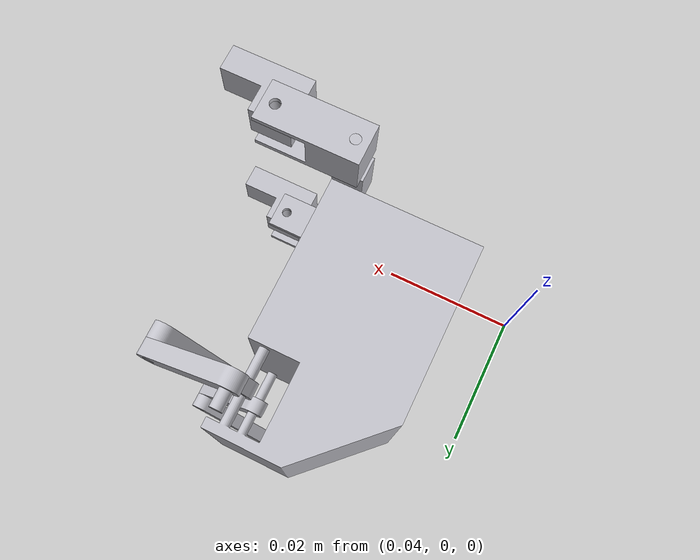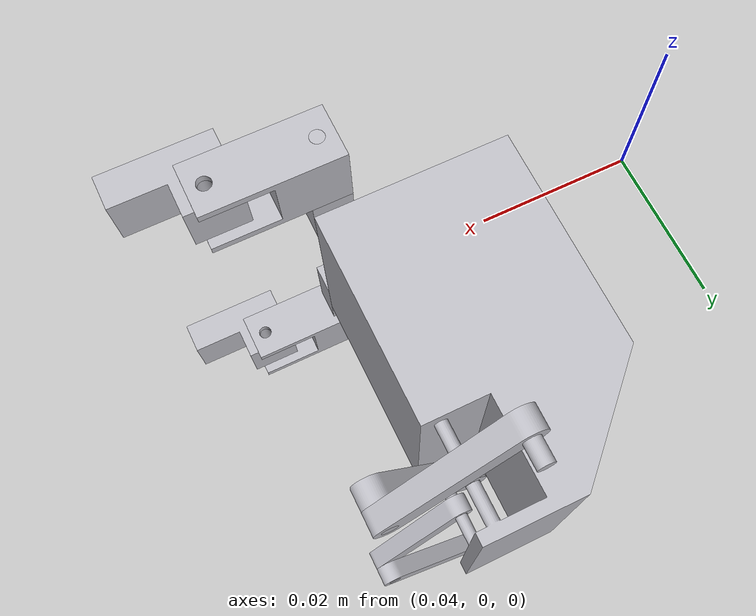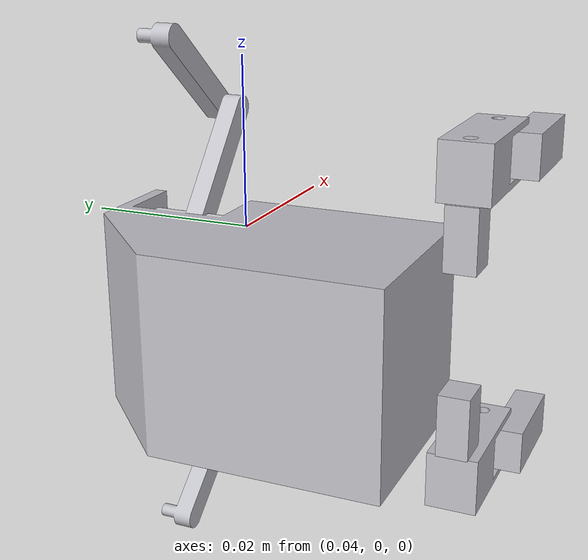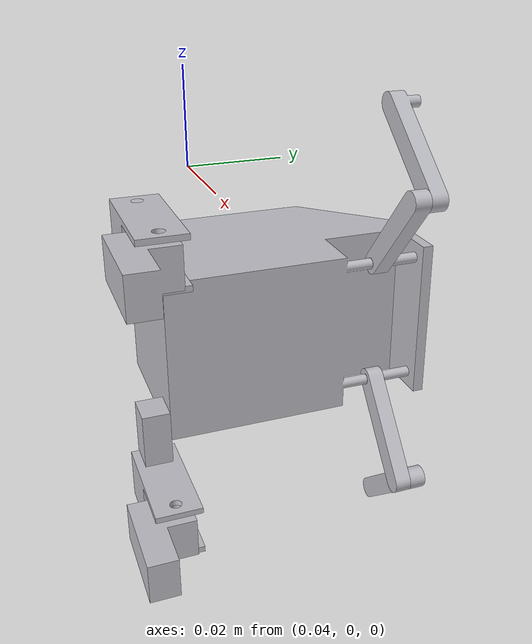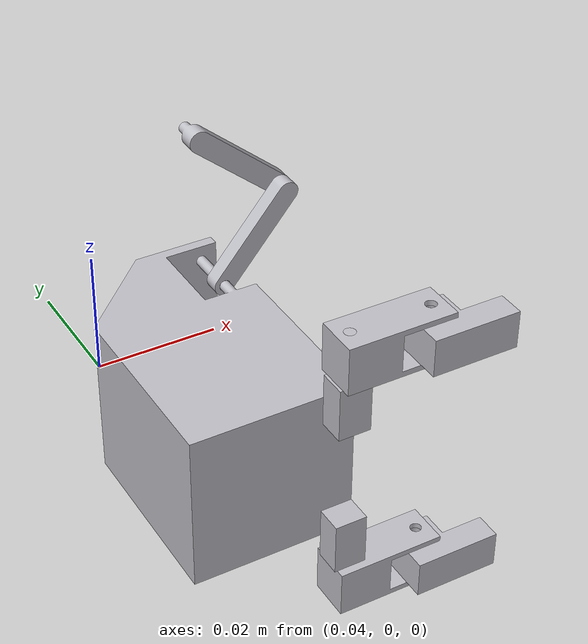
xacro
<?xml version="1.0" ?>
<robot name="base_link" xmlns:xacro="http://www.ros.org/wiki/xacro">

<xacro:include filename="$(find base_link_description)/urdf/materials.xacro" />
<xacro:include filename="$(find base_link_description)/urdf/base_link.trans" />
<xacro:include filename="$(find base_link_description)/urdf/base_link.gazebo" />
<link name="base_link">
  <inertial>
    <origin xyz="0.06483502701792071 0.004814967312494693 -0.027388669453506712" rpy="0 0 0"/>
    <mass value="0.2907900525200227"/>
    <inertia ixx="7.1e-05" iyy="4.1e-05" izz="6.9e-05" ixy="0.0" iyz="0.0" ixz="-0.0"/>
  </inertial>
  <visual>
    <origin xyz="0 0 0" rpy="0 0 0"/>
    <geometry>
      <mesh filename="package://base_link_description/meshes/base_link.stl" scale="0.001 0.001 0.001"/>
    </geometry>
    <material name="silver"/>
  </visual>
  <collision>
    <origin xyz="0 0 0" rpy="0 0 0"/>
    <geometry>
      <mesh filename="package://base_link_description/meshes/base_link.stl" scale="0.001 0.001 0.001"/>
    </geometry>
  </collision>
</link>

<link name="Component2_1">
  <inertial>
    <origin xyz="1.8617311899060685e-07 4.106634497041961e-07 3.303674824192693e-07" rpy="0 0 0"/>
    <mass value="7.583411966684051e-06"/>
    <inertia ixx="0.0" iyy="0.0" izz="0.0" ixy="-0.0" iyz="-0.0" ixz="0.0"/>
  </inertial>
  <visual>
    <origin xyz="-0.077165 -0.023928 0.039389" rpy="0 0 0"/>
    <geometry>
      <mesh filename="package://base_link_description/meshes/Component2_1.stl" scale="0.001 0.001 0.001"/>
    </geometry>
    <material name="silver"/>
  </visual>
  <collision>
    <origin xyz="-0.077165 -0.023928 0.039389" rpy="0 0 0"/>
    <geometry>
      <mesh filename="package://base_link_description/meshes/Component2_1.stl" scale="0.001 0.001 0.001"/>
    </geometry>
  </collision>
</link>

<link name="Component3_1">
  <inertial>
    <origin xyz="1.8621782235661577e-07 4.1066344952378486e-07 3.3054629569595484e-07" rpy="0 0 0"/>
    <mass value="7.583411966684036e-06"/>
    <inertia ixx="0.0" iyy="0.0" izz="0.0" ixy="-0.0" iyz="-0.0" ixz="-0.0"/>
  </inertial>
  <visual>
    <origin xyz="-0.077165 -0.023928 0.015389" rpy="0 0 0"/>
    <geometry>
      <mesh filename="package://base_link_description/meshes/Component3_1.stl" scale="0.001 0.001 0.001"/>
    </geometry>
    <material name="silver"/>
  </visual>
  <collision>
    <origin xyz="-0.077165 -0.023928 0.015389" rpy="0 0 0"/>
    <geometry>
      <mesh filename="package://base_link_description/meshes/Component3_1.stl" scale="0.001 0.001 0.001"/>
    </geometry>
  </collision>
</link>

<link name="Component5_1">
  <inertial>
    <origin xyz="0.006909092940163439 0.00011266328427488037 0.008234044953543941" rpy="0 0 0"/>
    <mass value="0.0021799380279681597"/>
    <inertia ixx="0.0" iyy="0.0" izz="0.0" ixy="-0.0" iyz="-0.0" ixz="-0.0"/>
  </inertial>
  <visual>
    <origin xyz="-0.077165 -0.023928 0.015389" rpy="0 0 0"/>
    <geometry>
      <mesh filename="package://base_link_description/meshes/Component5_1.stl" scale="0.001 0.001 0.001"/>
    </geometry>
    <material name="silver"/>
  </visual>
  <collision>
    <origin xyz="-0.077165 -0.023928 0.015389" rpy="0 0 0"/>
    <geometry>
      <mesh filename="package://base_link_description/meshes/Component5_1.stl" scale="0.001 0.001 0.001"/>
    </geometry>
  </collision>
</link>

<link name="Component7_1">
  <inertial>
    <origin xyz="0.006909092895460031 0.00011266328427494629 -0.008233384039765784" rpy="0 0 0"/>
    <mass value="0.0021799380279681584"/>
    <inertia ixx="0.0" iyy="0.0" izz="0.0" ixy="-0.0" iyz="0.0" ixz="0.0"/>
  </inertial>
  <visual>
    <origin xyz="-0.077165 -0.023928 0.039389" rpy="0 0 0"/>
    <geometry>
      <mesh filename="package://base_link_description/meshes/Component7_1.stl" scale="0.001 0.001 0.001"/>
    </geometry>
    <material name="silver"/>
  </visual>
  <collision>
    <origin xyz="-0.077165 -0.023928 0.039389" rpy="0 0 0"/>
    <geometry>
      <mesh filename="package://base_link_description/meshes/Component7_1.stl" scale="0.001 0.001 0.001"/>
    </geometry>
  </collision>
</link>

<link name="Component4_1">
  <inertial>
    <origin xyz="-0.008233775995694956 0.00011266328427491853 0.006909126131016351" rpy="0 0 0"/>
    <mass value="0.0021799380279681584"/>
    <inertia ixx="0.0" iyy="0.0" izz="0.0" ixy="0.0" iyz="-0.0" ixz="0.0"/>
  </inertial>
  <visual>
    <origin xyz="-0.090021 -0.026928 6.8e-05" rpy="0 0 0"/>
    <geometry>
      <mesh filename="package://base_link_description/meshes/Component4_1.stl" scale="0.001 0.001 0.001"/>
    </geometry>
    <material name="silver"/>
  </visual>
  <collision>
    <origin xyz="-0.090021 -0.026928 6.8e-05" rpy="0 0 0"/>
    <geometry>
      <mesh filename="package://base_link_description/meshes/Component4_1.stl" scale="0.001 0.001 0.001"/>
    </geometry>
  </collision>
</link>

<link name="Component6_1">
  <inertial>
    <origin xyz="-0.008233776040398433 0.00011266328427488384 -0.006908465217238216" rpy="0 0 0"/>
    <mass value="0.002179938027968158"/>
    <inertia ixx="0.0" iyy="0.0" izz="0.0" ixy="0.0" iyz="0.0" ixz="-0.0"/>
  </inertial>
  <visual>
    <origin xyz="-0.090021 -0.026928 0.05471" rpy="0 0 0"/>
    <geometry>
      <mesh filename="package://base_link_description/meshes/Component6_1.stl" scale="0.001 0.001 0.001"/>
    </geometry>
    <material name="silver"/>
  </visual>
  <collision>
    <origin xyz="-0.090021 -0.026928 0.05471" rpy="0 0 0"/>
    <geometry>
      <mesh filename="package://base_link_description/meshes/Component6_1.stl" scale="0.001 0.001 0.001"/>
    </geometry>
  </collision>
</link>

<link name="Component9_1">
  <inertial>
    <origin xyz="1.8625684744533189e-07 -0.002335078739352573 0.0032704570484524253" rpy="0 0 0"/>
    <mass value="0.002698349766198897"/>
    <inertia ixx="0.0" iyy="0.0" izz="0.0" ixy="0.0" iyz="0.0" ixz="0.0"/>
  </inertial>
  <visual>
    <origin xyz="-0.077165 0.016572 0.015389" rpy="0 0 0"/>
    <geometry>
      <mesh filename="package://base_link_description/meshes/Component9_1.stl" scale="0.001 0.001 0.001"/>
    </geometry>
    <material name="silver"/>
  </visual>
  <collision>
    <origin xyz="-0.077165 0.016572 0.015389" rpy="0 0 0"/>
    <geometry>
      <mesh filename="package://base_link_description/meshes/Component9_1.stl" scale="0.001 0.001 0.001"/>
    </geometry>
  </collision>
</link>

<link name="Component8_1">
  <inertial>
    <origin xyz="1.8613409366596834e-07 -0.002335078739352677 -0.003269796134673944" rpy="0 0 0"/>
    <mass value="0.002698349766198897"/>
    <inertia ixx="0.0" iyy="0.0" izz="0.0" ixy="-0.0" iyz="-0.0" ixz="0.0"/>
  </inertial>
  <visual>
    <origin xyz="-0.077165 0.016572 0.039389" rpy="0 0 0"/>
    <geometry>
      <mesh filename="package://base_link_description/meshes/Component8_1.stl" scale="0.001 0.001 0.001"/>
    </geometry>
    <material name="silver"/>
  </visual>
  <collision>
    <origin xyz="-0.077165 0.016572 0.039389" rpy="0 0 0"/>
    <geometry>
      <mesh filename="package://base_link_description/meshes/Component8_1.stl" scale="0.001 0.001 0.001"/>
    </geometry>
  </collision>
</link>

<link name="Component10_1">
  <inertial>
    <origin xyz="0.004390363616399606 4.10792812134686e-07 -0.004499669529564538" rpy="0 0 0"/>
    <mass value="0.006608917630484667"/>
    <inertia ixx="0.0" iyy="0.0" izz="0.0" ixy="0.0" iyz="-0.0" ixz="0.0"/>
  </inertial>
  <visual>
    <origin xyz="-0.077165 0.019072 -0.001111" rpy="0 0 0"/>
    <geometry>
      <mesh filename="package://base_link_description/meshes/Component10_1.stl" scale="0.001 0.001 0.001"/>
    </geometry>
    <material name="silver"/>
  </visual>
  <collision>
    <origin xyz="-0.077165 0.019072 -0.001111" rpy="0 0 0"/>
    <geometry>
      <mesh filename="package://base_link_description/meshes/Component10_1.stl" scale="0.001 0.001 0.001"/>
    </geometry>
  </collision>
</link>

<link name="Component11_1">
  <inertial>
    <origin xyz="0.004390363571696088 4.107928119508053e-07 -0.004499669708377958" rpy="0 0 0"/>
    <mass value="0.006608917630484665"/>
    <inertia ixx="0.0" iyy="0.0" izz="0.0" ixy="0.0" iyz="-0.0" ixz="0.0"/>
  </inertial>
  <visual>
    <origin xyz="-0.077165 0.019072 0.046889" rpy="0 0 0"/>
    <geometry>
      <mesh filename="package://base_link_description/meshes/Component11_1.stl" scale="0.001 0.001 0.001"/>
    </geometry>
    <material name="silver"/>
  </visual>
  <collision>
    <origin xyz="-0.077165 0.019072 0.046889" rpy="0 0 0"/>
    <geometry>
      <mesh filename="package://base_link_description/meshes/Component11_1.stl" scale="0.001 0.001 0.001"/>
    </geometry>
  </collision>
</link>

<link name="Component13_1">
  <inertial>
    <origin xyz="0.00274610951905839 -0.00343199339604406 0.003500330665505175" rpy="0 0 0"/>
    <mass value="0.006403674855762971"/>
    <inertia ixx="0.0" iyy="0.0" izz="0.0" ixy="0.0" iyz="-0.0" ixz="0.0"/>
  </inertial>
  <visual>
    <origin xyz="-0.092165 0.019072 0.006889" rpy="0 0 0"/>
    <geometry>
      <mesh filename="package://base_link_description/meshes/Component13_1.stl" scale="0.001 0.001 0.001"/>
    </geometry>
    <material name="silver"/>
  </visual>
  <collision>
    <origin xyz="-0.092165 0.019072 0.006889" rpy="0 0 0"/>
    <geometry>
      <mesh filename="package://base_link_description/meshes/Component13_1.stl" scale="0.001 0.001 0.001"/>
    </geometry>
  </collision>
</link>

<link name="Component12_1">
  <inertial>
    <origin xyz="0.0027461094743548714 -0.0034319933960442403 0.003500330486691801" rpy="0 0 0"/>
    <mass value="0.00640367485576297"/>
    <inertia ixx="0.0" iyy="0.0" izz="0.0" ixy="0.0" iyz="-0.0" ixz="0.0"/>
  </inertial>
  <visual>
    <origin xyz="-0.092165 0.019072 0.054889" rpy="0 0 0"/>
    <geometry>
      <mesh filename="package://base_link_description/meshes/Component12_1.stl" scale="0.001 0.001 0.001"/>
    </geometry>
    <material name="silver"/>
  </visual>
  <collision>
    <origin xyz="-0.092165 0.019072 0.054889" rpy="0 0 0"/>
    <geometry>
      <mesh filename="package://base_link_description/meshes/Component12_1.stl" scale="0.001 0.001 0.001"/>
    </geometry>
  </collision>
</link>

<joint name="Slider_13" type="prismatic">
  <origin xyz="0.077165 0.023928 -0.039389" rpy="0 0 0"/>
  <parent link="base_link"/>
  <child link="Component2_1"/>
  <axis xyz="-0.0 -1.0 0.0"/>
  <limit upper="0.0" lower="0.0" effort="100" velocity="100"/>
</joint>

<joint name="Slider_14" type="prismatic">
  <origin xyz="0.077165 0.023928 -0.015389" rpy="0 0 0"/>
  <parent link="base_link"/>
  <child link="Component3_1"/>
  <axis xyz="-0.0 -1.0 0.0"/>
  <limit upper="0.0" lower="0.0" effort="100" velocity="100"/>
</joint>

<joint name="Revolute_15" type="continuous">
  <origin xyz="0.0 0.0 0.0" rpy="0 0 0"/>
  <parent link="Component3_1"/>
  <child link="Component5_1"/>
  <axis xyz="-0.0 1.0 -0.0"/>
</joint>

<joint name="Revolute_16" type="continuous">
  <origin xyz="0.0 0.0 0.0" rpy="0 0 0"/>
  <parent link="Component2_1"/>
  <child link="Component7_1"/>
  <axis xyz="0.0 1.0 -0.0"/>
</joint>

<joint name="Revolute_17" type="continuous">
  <origin xyz="0.012856 0.003 0.015321" rpy="0 0 0"/>
  <parent link="Component5_1"/>
  <child link="Component4_1"/>
  <axis xyz="-0.0 1.0 -0.0"/>
</joint>

<joint name="Revolute_18" type="continuous">
  <origin xyz="0.012856 0.003 -0.015321" rpy="0 0 0"/>
  <parent link="Component7_1"/>
  <child link="Component6_1"/>
  <axis xyz="0.0 1.0 -0.0"/>
</joint>

<joint name="Revolute_19" type="continuous">
  <origin xyz="0.077165 -0.016572 -0.015389" rpy="0 0 0"/>
  <parent link="base_link"/>
  <child link="Component9_1"/>
  <axis xyz="0.0 1.0 -0.0"/>
</joint>

<joint name="Revolute_20" type="continuous">
  <origin xyz="0.077165 -0.016572 -0.039389" rpy="0 0 0"/>
  <parent link="base_link"/>
  <child link="Component8_1"/>
  <axis xyz="0.0 1.0 -0.0"/>
</joint>

<joint name="Revolute_21" type="continuous">
  <origin xyz="0.0 -0.0025 0.0165" rpy="0 0 0"/>
  <parent link="Component9_1"/>
  <child link="Component10_1"/>
  <axis xyz="0.0 0.0 1.0"/>
</joint>

<joint name="Revolute_22" type="continuous">
  <origin xyz="0.0 -0.0025 -0.0075" rpy="0 0 0"/>
  <parent link="Component8_1"/>
  <child link="Component11_1"/>
  <axis xyz="-0.0 -0.0 -1.0"/>
</joint>

<joint name="Revolute_23" type="continuous">
  <origin xyz="0.015 0.0 -0.008" rpy="0 0 0"/>
  <parent link="Component10_1"/>
  <child link="Component13_1"/>
  <axis xyz="0.0 0.0 1.0"/>
</joint>

<joint name="Revolute_24" type="continuous">
  <origin xyz="0.015 0.0 -0.008" rpy="0 0 0"/>
  <parent link="Component11_1"/>
  <child link="Component12_1"/>
  <axis xyz="0.0 0.0 1.0"/>
</joint>

</robot>

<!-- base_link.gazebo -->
<robot name="base_link" xmlns:xacro="http://www.ros.org/wiki/xacro" >

<xacro:property name="body_color" value="Gazebo/Silver" />

<gazebo>
  <plugin name="control" filename="libgazebo_ros_control.so"/>
</gazebo>
<gazebo reference="base_link">
  <material>${body_color}</material>
  <mu1>0.2</mu1>
  <mu2>0.2</mu2>
  <selfCollide>true</selfCollide>
  <gravity>true</gravity>
</gazebo>

<gazebo reference="Component2_1">
  <material>${body_color}</material>
  <mu1>0.2</mu1>
  <mu2>0.2</mu2>
  <selfCollide>true</selfCollide>
</gazebo>

<gazebo reference="Component3_1">
  <material>${body_color}</material>
  <mu1>0.2</mu1>
  <mu2>0.2</mu2>
  <selfCollide>true</selfCollide>
</gazebo>

<gazebo reference="Component5_1">
  <material>${body_color}</material>
  <mu1>0.2</mu1>
  <mu2>0.2</mu2>
  <selfCollide>true</selfCollide>
</gazebo>

<gazebo reference="Component7_1">
  <material>${body_color}</material>
  <mu1>0.2</mu1>
  <mu2>0.2</mu2>
  <selfCollide>true</selfCollide>
</gazebo>

<gazebo reference="Component4_1">
  <material>${body_color}</material>
  <mu1>0.2</mu1>
  <mu2>0.2</mu2>
  <selfCollide>true</selfCollide>
</gazebo>

<gazebo reference="Component6_1">
  <material>${body_color}</material>
  <mu1>0.2</mu1>
  <mu2>0.2</mu2>
  <selfCollide>true</selfCollide>
</gazebo>

<gazebo reference="Component9_1">
  <material>${body_color}</material>
  <mu1>0.2</mu1>
  <mu2>0.2</mu2>
  <selfCollide>true</selfCollide>
</gazebo>

<gazebo reference="Component8_1">
  <material>${body_color}</material>
  <mu1>0.2</mu1>
  <mu2>0.2</mu2>
  <selfCollide>true</selfCollide>
</gazebo>

<gazebo reference="Component10_1">
  <material>${body_color}</material>
  <mu1>0.2</mu1>
  <mu2>0.2</mu2>
  <selfCollide>true</selfCollide>
</gazebo>

<gazebo reference="Component11_1">
  <material>${body_color}</material>
  <mu1>0.2</mu1>
  <mu2>0.2</mu2>
  <selfCollide>true</selfCollide>
</gazebo>

<gazebo reference="Component13_1">
  <material>${body_color}</material>
  <mu1>0.2</mu1>
  <mu2>0.2</mu2>
  <selfCollide>true</selfCollide>
</gazebo>

<gazebo reference="Component12_1">
  <material>${body_color}</material>
  <mu1>0.2</mu1>
  <mu2>0.2</mu2>
  <selfCollide>true</selfCollide>
</gazebo>

</robot>
